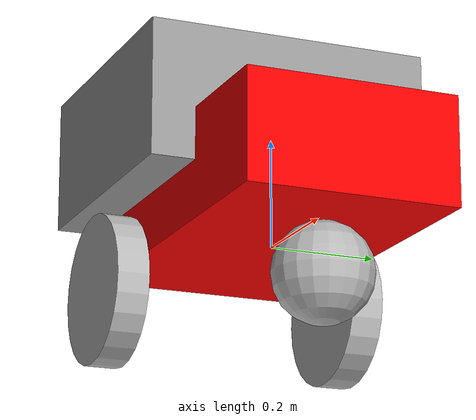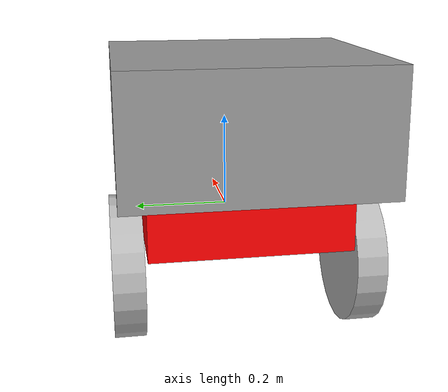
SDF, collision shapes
<?xml version='1.0'?>
<sdf version='1.7'>
  <model name='basic_mobile_bot_5'>
    <link name='base_footprint'>
      <self_collide>0</self_collide>
      <inertial>
        <pose>0 0 0 0 -0 0</pose>
        <inertia>
          <ixx>1</ixx>
          <ixy>0</ixy>
          <ixz>0</ixz>
          <iyy>1</iyy>
          <iyz>0</iyz>
          <izz>1</izz>
        </inertia>
        <mass>1</mass>
      </inertial>
      <enable_wind>0</enable_wind>
      <kinematic>0</kinematic>
      <pose>0 0 0 0 -0 0</pose>
    </link>
    <link name='base_link'>
      <self_collide>0</self_collide>
      <inertial>
        <pose>0 0 0 0 -0 0</pose>
        <inertia>
          <ixx>1</ixx>
          <ixy>0</ixy>
          <ixz>0</ixz>
          <iyy>1</iyy>
          <iyz>0</iyz>
          <izz>1</izz>
        </inertia>
        <mass>1</mass>
      </inertial>
      <enable_wind>0</enable_wind>
      <kinematic>0</kinematic>
      <pose>0 0 0 0 -0 0</pose>
      <visual name='base_visual'>
        <pose>0 0 -0.05 1.5708 -0 -3.14159</pose>
        <geometry>
          <mesh>
            <uri>model://basic_mobile_bot_description/meshes/robot_base.stl</uri>
            <scale>1 1 1</scale>
          </mesh>
        </geometry>
        <material>
          <ambient>1 0 0 1</ambient>
          <diffuse>1 0 0 1</diffuse>
          <specular>0 0 0 1</specular>
          <emissive>0 0 0 1</emissive>
          <shader type='pixel'/>
          <script>
            <name>ModelPreview_1::base_link::base_visual_MATERIAL_</name>
            <uri>__default__</uri>
          </script>
        </material>
        <transparency>0</transparency>
        <cast_shadows>1</cast_shadows>
      </visual>
      <collision name='base_collision'>
        <laser_retro>0</laser_retro>
        <max_contacts>10</max_contacts>
        <pose>0 0 0.1 0 -0 0</pose>
        <geometry>
          <box>
            <size>0.7 0.39 0.2</size>
          </box>
        </geometry>
        <surface>
          <friction>
            <ode>
              <mu>1</mu>
              <mu2>1</mu2>
              <fdir1>0 0 0</fdir1>
              <slip1>0</slip1>
              <slip2>0</slip2>
            </ode>
            <torsional>
              <coefficient>1</coefficient>
              <patch_radius>0</patch_radius>
              <surface_radius>0</surface_radius>
              <use_patch_radius>1</use_patch_radius>
              <ode>
                <slip>0</slip>
              </ode>
            </torsional>
          </friction>
          <bounce>
            <restitution_coefficient>0</restitution_coefficient>
            <threshold>1e+06</threshold>
          </bounce>
          <contact>
            <collide_without_contact>0</collide_without_contact>
            <collide_without_contact_bitmask>1</collide_without_contact_bitmask>
            <collide_bitmask>1</collide_bitmask>
            <ode>
              <soft_cfm>0</soft_cfm>
              <soft_erp>0.2</soft_erp>
              <kp>1e+13</kp>
              <kd>1</kd>
              <max_vel>0.01</max_vel>
              <min_depth>0</min_depth>
            </ode>
            <bullet>
              <split_impulse>1</split_impulse>
              <split_impulse_penetration_threshold>-0.01</split_impulse_penetration_threshold>
              <soft_cfm>0</soft_cfm>
              <soft_erp>0.2</soft_erp>
              <kp>1e+13</kp>
              <kd>1</kd>
            </bullet>
          </contact>
        </surface>
      </collision>
    </link>
    <link name='drivewhl_l_link'>
      <pose>-0.221 0.23 -0.05 3.13336 1.57079 -1.57902</pose>
      <self_collide>0</self_collide>
      <inertial>
        <pose>0 0 0 0 -0 0</pose>
        <inertia>
          <ixx>1</ixx>
          <ixy>0</ixy>
          <ixz>0</ixz>
          <iyy>1</iyy>
          <iyz>0</iyz>
          <izz>1</izz>
        </inertia>
        <mass>1</mass>
      </inertial>
      <enable_wind>0</enable_wind>
      <kinematic>0</kinematic>
      <visual name='drivewhl_l_visual'>
        <geometry>
          <cylinder>
            <radius>0.14</radius>
            <length>0.06</length>
          </cylinder>
        </geometry>
        <material>
          <shader type='pixel'/>
        </material>
        <pose>0 0 0 0 -0 0</pose>
        <transparency>0</transparency>
        <cast_shadows>1</cast_shadows>
      </visual>
      <collision name='drivewhl_l_collision'>
        <laser_retro>0</laser_retro>
        <max_contacts>10</max_contacts>
        <pose>0 0 0 0 -0 0</pose>
        <geometry>
          <cylinder>
            <radius>0.14</radius>
            <length>0.06</length>
          </cylinder>
        </geometry>
        <surface>
          <friction>
            <ode>
              <mu>1</mu>
              <mu2>1</mu2>
              <fdir1>0 0 0</fdir1>
              <slip1>0</slip1>
              <slip2>0</slip2>
            </ode>
            <torsional>
              <coefficient>1</coefficient>
              <patch_radius>0</patch_radius>
              <surface_radius>0</surface_radius>
              <use_patch_radius>1</use_patch_radius>
              <ode>
                <slip>0</slip>
              </ode>
            </torsional>
          </friction>
          <bounce>
            <restitution_coefficient>0</restitution_coefficient>
            <threshold>1e+06</threshold>
          </bounce>
          <contact>
            <collide_without_contact>0</collide_without_contact>
            <collide_without_contact_bitmask>1</collide_without_contact_bitmask>
            <collide_bitmask>1</collide_bitmask>
            <ode>
              <soft_cfm>0</soft_cfm>
              <soft_erp>0.2</soft_erp>
              <kp>1e+13</kp>
              <kd>1</kd>
              <max_vel>0.01</max_vel>
              <min_depth>0</min_depth>
            </ode>
            <bullet>
              <split_impulse>1</split_impulse>
              <split_impulse_penetration_threshold>-0.01</split_impulse_penetration_threshold>
              <soft_cfm>0</soft_cfm>
              <soft_erp>0.2</soft_erp>
              <kp>1e+13</kp>
              <kd>1</kd>
            </bullet>
          </contact>
        </surface>
      </collision>
    </link>
    <link name='drivewhl_r_link'>
      <pose>-0.221 -0.23 -0.05 3.13336 1.57079 -1.57902</pose>
      <self_collide>0</self_collide>
      <inertial>
        <pose>0 0 0 0 -0 0</pose>
        <inertia>
          <ixx>1</ixx>
          <ixy>0</ixy>
          <ixz>0</ixz>
          <iyy>1</iyy>
          <iyz>0</iyz>
          <izz>1</izz>
        </inertia>
        <mass>1</mass>
      </inertial>
      <enable_wind>0</enable_wind>
      <kinematic>0</kinematic>
      <visual name='drivewhl_r_visual'>
        <geometry>
          <cylinder>
            <radius>0.14</radius>
            <length>0.06</length>
          </cylinder>
        </geometry>
        <material>
          <shader type='pixel'/>
          <emissive>0 0 0 1</emissive>
        </material>
        <pose>0 0 0 0 -0 0</pose>
        <transparency>0</transparency>
        <cast_shadows>1</cast_shadows>
      </visual>
      <collision name='drivewhl_r_collision'>
        <laser_retro>0</laser_retro>
        <max_contacts>10</max_contacts>
        <pose>0 0 0 0 -0 0</pose>
        <geometry>
          <cylinder>
            <radius>0.14</radius>
            <length>0.06</length>
          </cylinder>
        </geometry>
        <surface>
          <friction>
            <ode>
              <mu>1</mu>
              <mu2>1</mu2>
              <fdir1>0 0 0</fdir1>
              <slip1>0</slip1>
              <slip2>0</slip2>
            </ode>
            <torsional>
              <coefficient>1</coefficient>
              <patch_radius>0</patch_radius>
              <surface_radius>0</surface_radius>
              <use_patch_radius>1</use_patch_radius>
              <ode>
                <slip>0</slip>
              </ode>
            </torsional>
          </friction>
          <bounce>
            <restitution_coefficient>0</restitution_coefficient>
            <threshold>1e+06</threshold>
          </bounce>
          <contact>
            <collide_without_contact>0</collide_without_contact>
            <collide_without_contact_bitmask>1</collide_without_contact_bitmask>
            <collide_bitmask>1</collide_bitmask>
            <ode>
              <soft_cfm>0</soft_cfm>
              <soft_erp>0.2</soft_erp>
              <kp>1e+13</kp>
              <kd>1</kd>
              <max_vel>0.01</max_vel>
              <min_depth>0</min_depth>
            </ode>
            <bullet>
              <split_impulse>1</split_impulse>
              <split_impulse_penetration_threshold>-0.01</split_impulse_penetration_threshold>
              <soft_cfm>0</soft_cfm>
              <soft_erp>0.2</soft_erp>
              <kp>1e+13</kp>
              <kd>1</kd>
            </bullet>
          </contact>
        </surface>
      </collision>
    </link>
    <link name='front_caster'>
      <pose>0.217 0 -0.1 0 -0 0</pose>
      <inertial>
        <inertia>
          <ixx>0.001</ixx>
          <ixy>0</ixy>
          <ixz>0</ixz>
          <iyy>0.001</iyy>
          <iyz>0</iyz>
          <izz>0.001</izz>
        </inertia>
        <mass>70</mass>
        <pose>0 0 0 0 -0 0</pose>
      </inertial>
      <self_collide>0</self_collide>
      <enable_wind>0</enable_wind>
      <kinematic>0</kinematic>
      <visual name='front_caster_visual'>
        <geometry>
          <sphere>
            <radius>0.09</radius>
          </sphere>
        </geometry>
        <material>
          <shader type='pixel'/>
        </material>
        <pose>0 0 0 0 -0 0</pose>
        <transparency>0</transparency>
        <cast_shadows>1</cast_shadows>
      </visual>
      <collision name='collision'>
        <laser_retro>0</laser_retro>
        <max_contacts>10</max_contacts>
        <pose>0 0 0 0 -0 0</pose>
        <geometry>
          <sphere>
            <radius>0.09</radius>
          </sphere>
        </geometry>
        <surface>
          <friction>
            <ode>
              <mu>0.01</mu>
              <mu2>0.01</mu2>
              <fdir1>0 0 0</fdir1>
              <slip1>1</slip1>
              <slip2>1</slip2>
            </ode>
            <torsional>
              <coefficient>1</coefficient>
              <patch_radius>0</patch_radius>
              <surface_radius>0</surface_radius>
              <use_patch_radius>1</use_patch_radius>
              <ode>
                <slip>0</slip>
              </ode>
            </torsional>
          </friction>
          <bounce>
            <restitution_coefficient>0</restitution_coefficient>
            <threshold>1e+06</threshold>
          </bounce>
          <contact>
            <collide_without_contact>0</collide_without_contact>
            <collide_without_contact_bitmask>1</collide_without_contact_bitmask>
            <collide_bitmask>1</collide_bitmask>
            <ode>
              <soft_cfm>0</soft_cfm>
              <soft_erp>0.2</soft_erp>
              <kp>1e+13</kp>
              <kd>1</kd>
              <max_vel>0.01</max_vel>
              <min_depth>0</min_depth>
            </ode>
            <bullet>
              <split_impulse>1</split_impulse>
              <split_impulse_penetration_threshold>-0.01</split_impulse_penetration_threshold>
              <soft_cfm>0</soft_cfm>
              <soft_erp>0.2</soft_erp>
              <kp>1e+13</kp>
              <kd>1</kd>
            </bullet>
          </contact>
        </surface>
      </collision>
    </link>
    <link name='gps_link'>
      <sensor name='bmb_gps' type='gps'>
        <always_on>1</always_on>
        <update_rate>10</update_rate>
        <gps>
          <position_sensing>
            <horizontal>
              <noise type='gaussian'>
                <mean>0</mean>
                <stddev>0.01</stddev>
              </noise>
            </horizontal>
            <vertical>
              <noise type='gaussian'>
                <mean>0</mean>
                <stddev>1</stddev>
              </noise>
            </vertical>
          </position_sensing>
        </gps>
        <plugin name='basic_mobile_bot_gps' filename='libgazebo_ros_gps_sensor.so'>
          <ros>
            <remapping>~/out:=gps/fix</remapping>
          </ros>
        </plugin>
      </sensor>
      <self_collide>0</self_collide>
      <inertial>
        <pose>0 0 0 0 -0 0</pose>
        <inertia>
          <ixx>1</ixx>
          <ixy>0</ixy>
          <ixz>0</ixz>
          <iyy>1</iyy>
          <iyz>0</iyz>
          <izz>1</izz>
        </inertia>
        <mass>1</mass>
      </inertial>
      <enable_wind>0</enable_wind>
      <kinematic>0</kinematic>
      <pose>0 0 0 0 -0 0</pose>
    </link>
    <link name='imu_link'>
      <gravity>1</gravity>
      <sensor name='bmb_imu' type='imu'>
        <always_on>1</always_on>
        <update_rate>100</update_rate>
        <visualize>1</visualize>
        <imu>
          <angular_velocity>
            <x>
              <noise type='gaussian'>
                <mean>0</mean>
                <stddev>0.0002</stddev>
              </noise>
            </x>
            <y>
              <noise type='gaussian'>
                <mean>0</mean>
                <stddev>0.0002</stddev>
              </noise>
            </y>
            <z>
              <noise type='gaussian'>
                <mean>0</mean>
                <stddev>0.0002</stddev>
              </noise>
            </z>
          </angular_velocity>
          <linear_acceleration>
            <x>
              <noise type='gaussian'>
                <mean>0</mean>
                <stddev>0.017</stddev>
              </noise>
            </x>
            <y>
              <noise type='gaussian'>
                <mean>0</mean>
                <stddev>0.017</stddev>
              </noise>
            </y>
            <z>
              <noise type='gaussian'>
                <mean>0</mean>
                <stddev>0.017</stddev>
              </noise>
            </z>
          </linear_acceleration>
          <angular_velocity/>
          <linear_acceleration/>
          <orientation>
            <x>
              <noise type='gaussian'>
                <mean>0.0</mean>
                <stddev>2e-3</stddev>
              </noise>
            </x>
            <y>
              <noise type='gaussian'>
                <mean>0.0</mean>
                <stddev>2e-3</stddev>
              </noise>
            </y>
            <z>
              <noise type='gaussian'>
                <mean>0.0</mean>
                <stddev>2e-3</stddev>
              </noise>
            </z>
          </orientation>
        </imu>
        <plugin name='basic_mobile_bot_imu' filename='libgazebo_ros_imu_sensor.so'>
          <initial_orientation_as_reference>0</initial_orientation_as_reference>
          <frame_name>imu_link</frame_name>
          <ros>
            <namespace>/imu</namespace>
            <remapping>~/out:=data</remapping>
          </ros>
        </plugin>
      </sensor>
      <self_collide>0</self_collide>
      <inertial>
        <pose>0 0 0 0 -0 0</pose>
        <inertia>
          <ixx>1</ixx>
          <ixy>0</ixy>
          <ixz>0</ixz>
          <iyy>1</iyy>
          <iyz>0</iyz>
          <izz>1</izz>
        </inertia>
        <mass>1</mass>
      </inertial>
      <enable_wind>0</enable_wind>
      <kinematic>0</kinematic>
      <pose>0 0 0 0 -0 0</pose>
    </link>
    <link name='lidar_link'>
      <inertial>
        <pose>0.215 0 0.13 0 -0 0</pose>
        <inertia>
          <ixx>0.001</ixx>
          <ixy>0</ixy>
          <ixz>0</ixz>
          <iyy>0.001</iyy>
          <iyz>0</iyz>
          <izz>0.001</izz>
        </inertia>
        <mass>0.114</mass>
      </inertial>
      <sensor name='lidar' type='ray'>
        <pose>0.215 0 0.215 0 -0 0</pose>
        <always_on>1</always_on>
        <visualize>1</visualize>
        <update_rate>5</update_rate>
        <ray>
          <scan>
            <horizontal>
              <samples>360</samples>
              <resolution>1</resolution>
              <min_angle>0</min_angle>
              <max_angle>6.28</max_angle>
            </horizontal>
            <vertical>
              <samples>1</samples>
              <min_angle>0</min_angle>
              <max_angle>0</max_angle>
            </vertical>
          </scan>
          <range>
            <min>0.12</min>
            <max>3.5</max>
            <resolution>0.015</resolution>
          </range>
          <noise>
            <type>gaussian</type>
            <mean>0</mean>
            <stddev>0.01</stddev>
          </noise>
        </ray>
        <plugin name='scan' filename='libgazebo_ros_ray_sensor.so'>
          <ros>
            <remapping>~/out:=scan</remapping>
          </ros>
          <output_type>sensor_msgs/LaserScan</output_type>
          <frame_name>lidar_link</frame_name>
        </plugin>
      </sensor>
      <self_collide>0</self_collide>
      <enable_wind>0</enable_wind>
      <kinematic>0</kinematic>
      <pose>0 0 0 0 -0 0</pose>
      <visual name='lidar_visual'>
        <pose>0.215 0 0.13 0 -0 0</pose>
        <geometry>
          <cylinder>
            <radius>0.0508</radius>
            <length>0.18</length>
          </cylinder>
        </geometry>
        <material>
          <ambient>0 0 0 1</ambient>
          <diffuse>0 0 0 1</diffuse>
          <specular>0 0 0 1</specular>
          <emissive>0 0 0 1</emissive>
          <shader type='pixel'/>
          <script>
            <name>ModelPreview_1::lidar_link::lidar_visual_MATERIAL_</name>
            <uri>__default__</uri>
          </script>
        </material>
        <transparency>0</transparency>
        <cast_shadows>1</cast_shadows>
      </visual>
      <collision name='lidar_collision'>
        <laser_retro>0</laser_retro>
        <max_contacts>10</max_contacts>
        <pose>0.215 0 0.13 0 -0 0</pose>
        <geometry>
          <cylinder>
            <radius>0.0508</radius>
            <length>0.18</length>
          </cylinder>
        </geometry>
        <surface>
          <friction>
            <ode>
              <mu>1</mu>
              <mu2>1</mu2>
              <fdir1>0 0 0</fdir1>
              <slip1>0</slip1>
              <slip2>0</slip2>
            </ode>
            <torsional>
              <coefficient>1</coefficient>
              <patch_radius>0</patch_radius>
              <surface_radius>0</surface_radius>
              <use_patch_radius>1</use_patch_radius>
              <ode>
                <slip>0</slip>
              </ode>
            </torsional>
          </friction>
          <bounce>
            <restitution_coefficient>0</restitution_coefficient>
            <threshold>1e+06</threshold>
          </bounce>
          <contact>
            <collide_without_contact>0</collide_without_contact>
            <collide_without_contact_bitmask>1</collide_without_contact_bitmask>
            <collide_bitmask>1</collide_bitmask>
            <ode>
              <soft_cfm>0</soft_cfm>
              <soft_erp>0.2</soft_erp>
              <kp>1e+13</kp>
              <kd>1</kd>
              <max_vel>0.01</max_vel>
              <min_depth>0</min_depth>
            </ode>
            <bullet>
              <split_impulse>1</split_impulse>
              <split_impulse_penetration_threshold>-0.01</split_impulse_penetration_threshold>
              <soft_cfm>0</soft_cfm>
              <soft_erp>0.2</soft_erp>
              <kp>1e+13</kp>
              <kd>1</kd>
            </bullet>
          </contact>
        </surface>
      </collision>
    </link>
    <link name='link_0'>
      <inertial>
        <mass>0.0663023</mass>
        <inertia>
          <ixx>0.00183933</ixx>
          <ixy>0</ixy>
          <ixz>0</ixz>
          <iyy>0.00178243</iyy>
          <iyz>0</iyz>
          <izz>0.00293111</izz>
        </inertia>
        <pose>0 0 0 0 -0 0</pose>
      </inertial>
      <pose>-0.132897 -0.014724 0.230005 3e-06 -5.7e-05 -0.003087</pose>
      <gravity>0</gravity>
      <self_collide>0</self_collide>
      <kinematic>0</kinematic>
      <enable_wind>0</enable_wind>
      <visual name='visual'>
        <pose>0 0 0 0 -0 0</pose>
        <geometry>
          <box>
            <size>0.51 0.52 0.25</size>
          </box>
        </geometry>
        <material>
          <lighting>1</lighting>
          <script>
            <uri>file://media/materials/scripts/gazebo.material</uri>
            <name>Gazebo/Grey</name>
          </script>
          <shader type='pixel'>
            <normal_map>__default__</normal_map>
          </shader>
          <ambient>0.3 0.3 0.3 1</ambient>
          <diffuse>0.7 0.7 0.7 1</diffuse>
          <specular>0.01 0.01 0.01 1</specular>
          <emissive>0 0 0 1</emissive>
        </material>
        <transparency>0</transparency>
        <cast_shadows>1</cast_shadows>
      </visual>
      <collision name='collision'>
        <laser_retro>0</laser_retro>
        <max_contacts>10</max_contacts>
        <pose>0 0 0 0 -0 0</pose>
        <geometry>
          <box>
            <size>0.51 0.52 0.25</size>
          </box>
        </geometry>
        <surface>
          <friction>
            <ode>
              <mu>1</mu>
              <mu2>1</mu2>
              <fdir1>0 0 0</fdir1>
              <slip1>0</slip1>
              <slip2>0</slip2>
            </ode>
            <torsional>
              <coefficient>1</coefficient>
              <patch_radius>0</patch_radius>
              <surface_radius>0</surface_radius>
              <use_patch_radius>1</use_patch_radius>
              <ode>
                <slip>0</slip>
              </ode>
            </torsional>
          </friction>
          <bounce>
            <restitution_coefficient>0</restitution_coefficient>
            <threshold>1e+06</threshold>
          </bounce>
          <contact>
            <collide_without_contact>0</collide_without_contact>
            <collide_without_contact_bitmask>1</collide_without_contact_bitmask>
            <collide_bitmask>1</collide_bitmask>
            <ode>
              <soft_cfm>0</soft_cfm>
              <soft_erp>0.2</soft_erp>
              <kp>1e+13</kp>
              <kd>1</kd>
              <max_vel>0.01</max_vel>
              <min_depth>0</min_depth>
            </ode>
            <bullet>
              <split_impulse>1</split_impulse>
              <split_impulse_penetration_threshold>-0.01</split_impulse_penetration_threshold>
              <soft_cfm>0</soft_cfm>
              <soft_erp>0.2</soft_erp>
              <kp>1e+13</kp>
              <kd>1</kd>
            </bullet>
          </contact>
        </surface>
      </collision>
    </link>
    <joint name='base_joint' type='fixed'>
      <parent>base_footprint</parent>
      <child>base_link</child>
      <pose>0 0 0 0 -0 0</pose>
      <physics>
        <ode>
          <limit>
            <cfm>0</cfm>
            <erp>0.2</erp>
          </limit>
          <suspension>
            <cfm>0</cfm>
            <erp>0.2</erp>
          </suspension>
        </ode>
      </physics>
    </joint>
    <joint name='caster_joint' type='fixed'>
      <parent>base_link</parent>
      <child>front_caster</child>
      <pose>0 0 0 0 -0 0</pose>
      <physics>
        <ode>
          <limit>
            <cfm>0</cfm>
            <erp>0.2</erp>
          </limit>
          <suspension>
            <cfm>0</cfm>
            <erp>0.2</erp>
          </suspension>
        </ode>
      </physics>
    </joint>
    <joint name='drivewhl_l_joint' type='revolute'>
      <parent>base_link</parent>
      <child>drivewhl_l_link</child>
      <pose>0 0 0 0 -0 0</pose>
      <axis>
        <xyz>0 0 1</xyz>
        <limit>
          <lower>-1e+16</lower>
          <upper>1e+16</upper>
          <effort>-1</effort>
          <velocity>-1</velocity>
        </limit>
        <dynamics>
          <spring_reference>0</spring_reference>
          <spring_stiffness>0</spring_stiffness>
          <damping>0</damping>
          <friction>0</friction>
        </dynamics>
      </axis>
      <physics>
        <ode>
          <limit>
            <cfm>0</cfm>
            <erp>0.2</erp>
          </limit>
          <suspension>
            <cfm>0</cfm>
            <erp>0.2</erp>
          </suspension>
        </ode>
      </physics>
    </joint>
    <joint name='drivewhl_r_joint' type='revolute'>
      <parent>base_link</parent>
      <child>drivewhl_r_link</child>
      <pose>0 0 0 0 -0 0</pose>
      <axis>
        <xyz>0 0 1</xyz>
        <limit>
          <lower>-1e+16</lower>
          <upper>1e+16</upper>
          <effort>-1</effort>
          <velocity>-1</velocity>
        </limit>
        <dynamics>
          <spring_reference>0</spring_reference>
          <spring_stiffness>0</spring_stiffness>
          <damping>0</damping>
          <friction>0</friction>
        </dynamics>
      </axis>
      <physics>
        <ode>
          <limit>
            <cfm>0</cfm>
            <erp>0.2</erp>
          </limit>
          <suspension>
            <cfm>0</cfm>
            <erp>0.2</erp>
          </suspension>
        </ode>
      </physics>
    </joint>
    <joint name='gps_joint' type='fixed'>
      <parent>base_link</parent>
      <child>gps_link</child>
      <pose>0 0 0 0 -0 0</pose>
      <physics>
        <ode>
          <limit>
            <cfm>0</cfm>
            <erp>0.2</erp>
          </limit>
          <suspension>
            <cfm>0</cfm>
            <erp>0.2</erp>
          </suspension>
        </ode>
      </physics>
    </joint>
    <joint name='imu_joint' type='fixed'>
      <parent>base_link</parent>
      <child>imu_link</child>
      <pose>0 0 0 0 -0 0</pose>
      <physics>
        <ode>
          <limit>
            <cfm>0</cfm>
            <erp>0.2</erp>
          </limit>
          <suspension>
            <cfm>0</cfm>
            <erp>0.2</erp>
          </suspension>
        </ode>
      </physics>
    </joint>
    <joint name='lidar_joint' type='fixed'>
      <parent>base_link</parent>
      <child>lidar_link</child>
      <pose>0 0 0 0 -0 0</pose>
      <physics>
        <ode>
          <limit>
            <cfm>0</cfm>
            <erp>0.2</erp>
          </limit>
          <suspension>
            <cfm>0</cfm>
            <erp>0.2</erp>
          </suspension>
        </ode>
      </physics>
    </joint>
    <joint name='link_0_JOINT_0' type='revolute'>
      <parent>base_link</parent>
      <child>link_0</child>
      <pose>0 0 0 0 -0 0</pose>
      <axis>
        <xyz>1 0 0</xyz>
        <limit>
          <lower>-1.79769e+308</lower>
          <upper>1.79769e+308</upper>
          <effort>-1</effort>
          <velocity>-1</velocity>
        </limit>
        <dynamics>
          <spring_reference>0</spring_reference>
          <spring_stiffness>0</spring_stiffness>
          <damping>0</damping>
        </dynamics>
      </axis>
      <physics>
        <ode>
          <limit>
            <cfm>0</cfm>
            <erp>0.2</erp>
          </limit>
          <suspension>
            <cfm>0</cfm>
            <erp>0.2</erp>
          </suspension>
        </ode>
      </physics>
    </joint>
    <static>0</static>
    <allow_auto_disable>1</allow_auto_disable>
    <plugin name='basic_mobile_bot_diff_drive' filename='libgazebo_ros_diff_drive.so'>
      <update_rate>30</update_rate>
      <left_joint>drivewhl_l_joint</left_joint>
      <right_joint>drivewhl_r_joint</right_joint>
      <wheel_separation>0.52</wheel_separation>
      <wheel_diameter>0.28</wheel_diameter>
      <max_wheel_torque>20</max_wheel_torque>
      <max_wheel_acceleration>1.0</max_wheel_acceleration>
      <command_topic>cmd_vel</command_topic>
      <publish_odom>1</publish_odom>
      <publish_odom_tf>0</publish_odom_tf>
      <publish_wheel_tf>0</publish_wheel_tf>
      <odometry_topic>odom</odometry_topic>
      <odometry_frame>odom</odometry_frame>
      <robot_base_frame>base_footprint</robot_base_frame>
      <odometry_source>0</odometry_source>
      <ros>
        <remapping>odom:=wheel/odometry</remapping>
      </ros>
    </plugin>
    <plugin name='basic_mobile_bot_joint_state' filename='libgazebo_ros_joint_state_publisher.so'>
      <ros>
        <remapping>~/out:=joint_states</remapping>
      </ros>
      <update_rate>30</update_rate>
      <joint_name>drivewhl_l_joint</joint_name>
      <joint_name>drivewhl_r_joint</joint_name>
    </plugin>
  </model>
</sdf>
